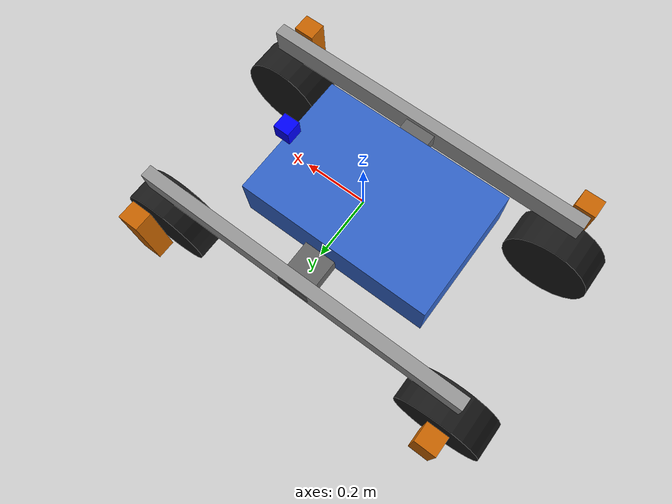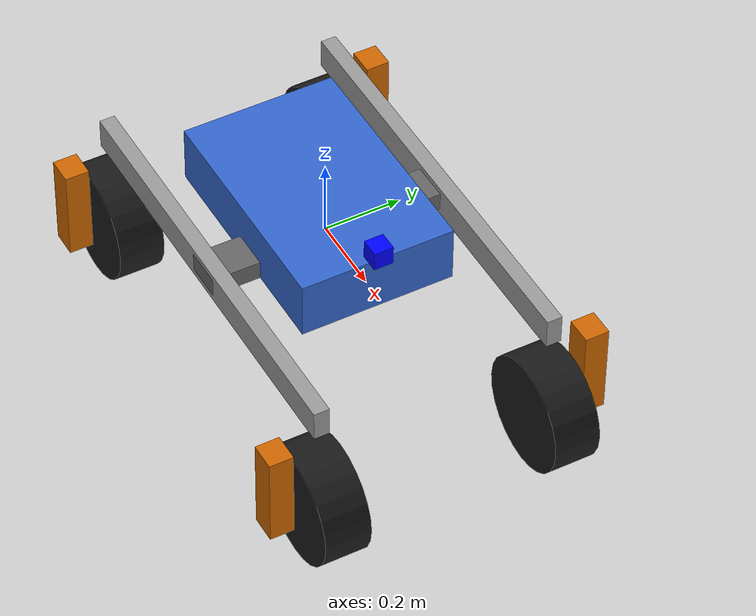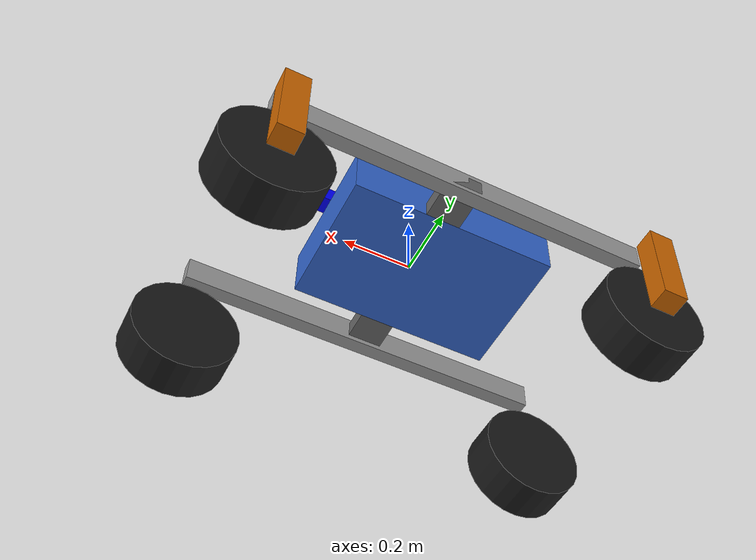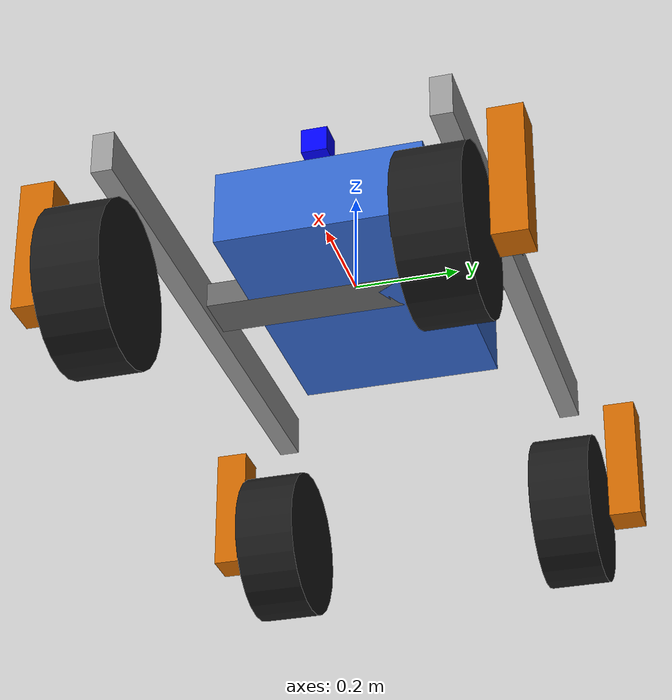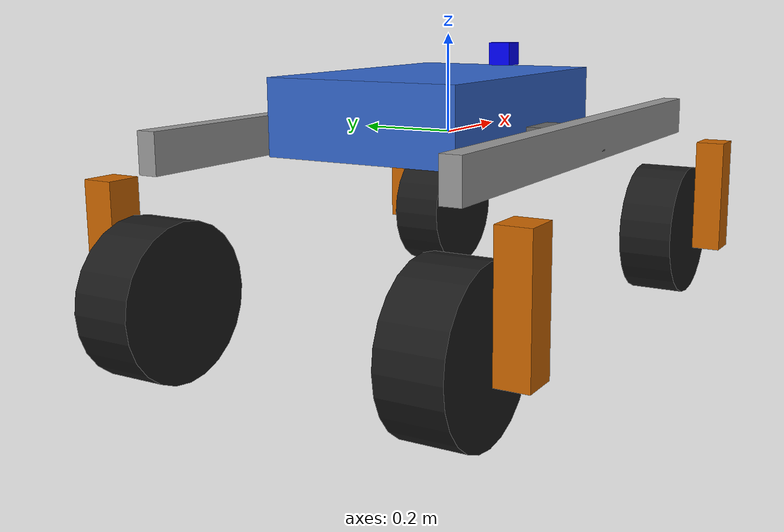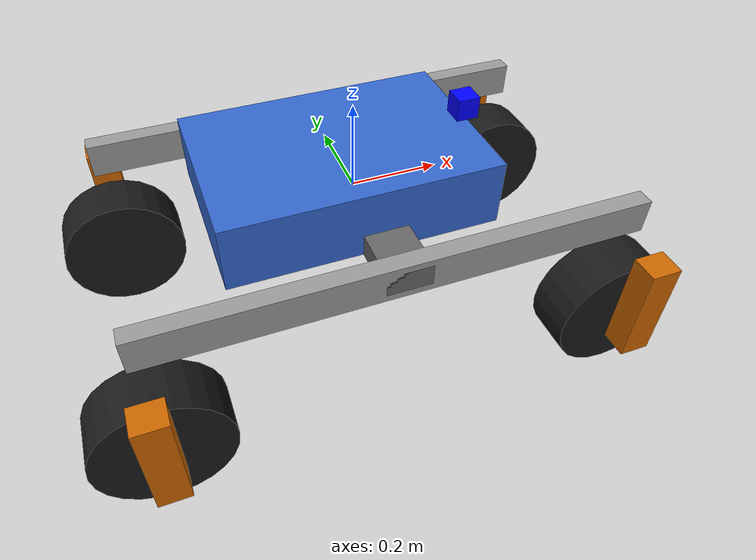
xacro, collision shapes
<?xml version="1.0"?>
<robot name="indomitus_s1" xmlns:xacro="http://www.ros.org/wiki/xacro">

  <!-- ===================== MATERIALS ===================== -->
  <material name="blue_body">
    <color rgba="0.2 0.4 0.8 1"/>
  </material>
  <material name="grey_structure">
    <color rgba="0.6 0.6 0.6 1"/>
  </material>
  <material name="orange_mount">
    <color rgba="0.8 0.4 0.0 1"/>
  </material>
  <material name="dark_wheel">
    <color rgba="0.1 0.1 0.1 1"/>
  </material>
  <material name="red_axii">
    <color rgba="0.4 0.4 0.4 1"/>
  </material>

  <!-- ===================== BASE ===================== -->
  <link name="base_link">
    <inertial>
      <mass value="0.1"/>
      <inertia ixx="0.01" iyy="0.01" izz="0.01" ixy="0" ixz="0" iyz="0"/>
    </inertial>
  </link>

  <!-- ===================== SUSPENSION BASE AXII ===================== -->
  <link name="suspension_base_axii_link">
    <inertial>
      <origin xyz="0 0 0" rpy="0 0 0"/>
      <mass value="0.5"/>
      <inertia ixx="0.5" iyy="0.5" izz="1.0" ixy="0" ixz="0" iyz="0"/>
    </inertial>
    <visual>
      <origin xyz="0 -0.325 0" rpy="0 0 0"/>
      <geometry>
        <mesh filename="package://indomitus_rover_description/meshes/suspension/central_axii.stl" scale="0.001 0.001 0.001"/>
      </geometry>
      <material name="red_axii"/>
    </visual>
    <collision>
      <origin xyz="0 0 0" rpy="0 0 0"/>
      <geometry>
        <box size="0.1 0.65 0.05"/>
      </geometry>
    </collision>
  </link>

  <joint name="suspension_base_axii_joint" type="fixed">
    <parent link="base_link"/>
    <child link="suspension_base_axii_link"/>
    <origin xyz="0 0 0" rpy="0 0 0"/>
  </joint>

  <!-- ===================== MAIN BODY ===================== -->
  <link name="main_body_link">
    <inertial>
      <origin xyz="0 0 0" rpy="0 0 0"/>
      <mass value="40.0"/>
      <inertia ixx="0.608" iyy="1.283" izz="1.733" ixy="0" ixz="0" iyz="0"/>
    </inertial>
    <visual>
      <origin xyz="0 0 0" rpy="0 0 0"/>
      <geometry>
        <box size="0.6 0.4 0.2"/>
      </geometry>
      <material name="blue_body"/>
    </visual>
    <collision>
      <origin xyz="0 0 0" rpy="0 0 0"/>
      <geometry>
        <box size="0.6 0.4 0.15"/>
      </geometry>
    </collision>
  </link>

  <joint name="main_body_joint" type="fixed">
    <parent link="suspension_base_axii_link"/>
    <child link="main_body_link"/>
    <origin xyz="-0.04 0 0.05" rpy="0 0 0"/>
  </joint>

  <!-- ===================== CAMERA ===================== -->
  <xacro:include filename="$(find indomitus_rover_description)/urdf/camera.urdf.xacro"/>
  <xacro:camera/>

  <!-- ===================== LEFT ROCKER ===================== -->
  <link name="l_rocker_link">
    <inertial>
      <origin xyz="0 0 0" rpy="0 0 0"/>
      <mass value="1.0"/>
      <inertia ixx="0.01" iyy="0.01" izz="0.01" ixy="0" ixz="0" iyz="0"/>
    </inertial>
    <visual>
      <origin xyz="-0.55 0.02 -0.04" rpy="0 0 0"/>
      <geometry>
        <mesh filename="package://indomitus_rover_description/meshes/suspension/rocker.stl" scale="0.001 0.001 0.001"/>
      </geometry>
      <material name="grey_structure"/>
    </visual>
    <collision>
      <origin xyz="0 0 0" rpy="0 0 0"/>
      <geometry>
        <box size="1.1 0.04 0.08"/>
      </geometry>
    </collision>
  </link>

  <joint name="l_rocker_joint" type="revolute">
    <parent link="suspension_base_axii_link"/>
    <child link="l_rocker_link"/>
    <origin xyz="0 0.305 0" rpy="0 0 0"/>
    <axis xyz="0 1 0"/>
    <limit lower="-0.5" upper="0.5" effort="100" velocity="1.0"/>
    <dynamics damping="0.5" friction="0.1"/>
  </joint>

  <!-- ===================== RIGHT ROCKER ===================== -->
  <link name="r_rocker_link">
    <inertial>
      <origin xyz="0 0 0" rpy="0 0 0"/>
      <mass value="1.0"/>
      <inertia ixx="0.01" iyy="0.01" izz="0.01" ixy="0" ixz="0" iyz="0"/>
    </inertial>
    <visual>
      <origin xyz="-0.55 0.02 -0.04" rpy="0 0 0"/>
      <geometry>
        <mesh filename="package://indomitus_rover_description/meshes/suspension/rocker.stl" scale="0.001 0.001 0.001"/>
      </geometry>
      <material name="grey_structure"/>
    </visual>
    <collision>
      <origin xyz="0 0 0" rpy="0 0 0"/>
      <geometry>
        <box size="1.1 0.04 0.08"/>
      </geometry>
    </collision>
  </link>

  <joint name="r_rocker_joint" type="revolute">
    <parent link="suspension_base_axii_link"/>
    <child link="r_rocker_link"/>
    <origin xyz="0 -0.305 0" rpy="0 0 0"/>
    <axis xyz="0 1 0"/>
    <limit lower="-0.5" upper="0.5" effort="100" velocity="1.0"/>
    <dynamics damping="0.5" friction="0.1"/>
  </joint>

  <!-- ===================== FRONT LEFT WHEEL MOUNT ===================== -->
  <link name="fl_wheel_mount_link">
    <inertial>
      <origin xyz="0 0 0" rpy="0 0 0"/>
      <mass value="0.162"/>
      <inertia ixx="0.0002" iyy="0.00012" izz="0.00012" ixy="0" ixz="0" iyz="0"/>
    </inertial>
    <visual>
      <origin xyz="0 -0.06 -0.269" rpy="0 0 0"/>
      <geometry>
        <mesh filename="package://indomitus_rover_description/meshes/suspension/wheel_mount.stl" scale="0.001 0.001 0.001"/>
      </geometry>
      <material name="orange_mount"/>
    </visual>
    <collision>
      <origin xyz="0 0.11125 -0.18" rpy="0 0 0"/>
      <geometry>
        <box size="0.07 0.0625 0.25"/>
      </geometry>
    </collision>
  </link>

  <joint name="fl_wheel_mount_joint" type="revolute">
    <parent link="l_rocker_link"/>
    <child link="fl_wheel_mount_link"/>
    <origin xyz="0.53 0 0" rpy="0 0 0"/>
    <axis xyz="0 0 1"/>
    <limit lower="-1.5708" upper="1.5708" effort="500" velocity="2"/>
    <dynamics damping="0.5" friction="0.3"/>
  </joint>

  <!-- ===================== FRONT LEFT WHEEL ===================== -->
  <link name="fl_wheel_link">
    <inertial>
      <origin xyz="0 0 0" rpy="0 0 0"/>
      <mass value="0.5"/>
      <inertia ixx="0.00563" iyy="0.00563" izz="0.01125" ixy="0" ixz="0" iyz="0"/>
    </inertial>
    <visual>
      <origin xyz="0 -0.06 0" rpy="-1.5708 0 0"/>
      <geometry>
        <mesh filename="package://indomitus_rover_description/meshes/suspension/wheel.stl" scale="0.001 0.001 0.001"/>
      </geometry>
      <material name="dark_wheel"/>
    </visual>
    <collision>
      <origin xyz="0 0 0" rpy="1.5708 0 0"/>
      <geometry>
        <cylinder radius="0.15" length="0.12"/>
      </geometry>
    </collision>
  </link>

  <joint name="fl_wheel_joint" type="continuous">
    <parent link="fl_wheel_mount_link"/>
    <child link="fl_wheel_link"/>
    <origin xyz="0 0 -0.27" rpy="0 0 0"/>
    <axis xyz="0 1 0"/>
    <limit effort="100" velocity="10"/>
  </joint>

  <!-- ===================== FRONT RIGHT WHEEL MOUNT ===================== -->
  <link name="fr_wheel_mount_link">
    <inertial>
      <origin xyz="0 0 0" rpy="0 0 0"/>
      <mass value="0.162"/>
      <inertia ixx="0.0002" iyy="0.00012" izz="0.00012" ixy="0" ixz="0" iyz="0"/>
    </inertial>
    <visual>
      <origin xyz="0 0.06 -0.269" rpy="0 0 3.14159"/>
      <geometry>
        <mesh filename="package://indomitus_rover_description/meshes/suspension/wheel_mount.stl" scale="0.001 0.001 0.001"/>
      </geometry>
      <material name="orange_mount"/>
    </visual>
    <collision>
      <origin xyz="0 -0.11125 -0.18" rpy="0 0 0"/>
      <geometry>
        <box size="0.07 0.0625 0.25"/>
      </geometry>
    </collision>
  </link>

  <joint name="fr_wheel_mount_joint" type="revolute">
    <parent link="r_rocker_link"/>
    <child link="fr_wheel_mount_link"/>
    <origin xyz="0.53 0 0" rpy="0 0 0"/>
    <axis xyz="0 0 1"/>
    <limit lower="-1.5708" upper="1.5708" effort="500" velocity="2"/>
    <dynamics damping="0.5" friction="0.3"/>
  </joint>

  <!-- ===================== FRONT RIGHT WHEEL ===================== -->
  <link name="fr_wheel_link">
    <inertial>
      <origin xyz="0 0 0" rpy="0 0 0"/>
      <mass value="0.5"/>
      <inertia ixx="0.00563" iyy="0.00563" izz="0.01125" ixy="0" ixz="0" iyz="0"/>
    </inertial>
    <visual>
      <origin xyz="0 0.06 0" rpy="-1.5708 0 3.14159"/>
      <geometry>
        <mesh filename="package://indomitus_rover_description/meshes/suspension/wheel.stl" scale="0.001 0.001 0.001"/>
      </geometry>
      <material name="dark_wheel"/>
    </visual>
    <collision>
      <origin xyz="0 0 0" rpy="-1.5708 0 0"/>
      <geometry>
        <cylinder radius="0.15" length="0.12"/>
      </geometry>
    </collision>
  </link>

  <joint name="fr_wheel_joint" type="continuous">
    <parent link="fr_wheel_mount_link"/>
    <child link="fr_wheel_link"/>
    <origin xyz="0 0 -0.27" rpy="0 0 0"/>
    <axis xyz="0 1 0"/>
    <limit effort="100" velocity="10"/>
  </joint>

  <!-- ===================== BACK LEFT WHEEL MOUNT ===================== -->
  <link name="bl_wheel_mount_link">
    <inertial>
      <origin xyz="0 0 0" rpy="0 0 0"/>
      <mass value="0.162"/>
      <inertia ixx="0.0002" iyy="0.00012" izz="0.00012" ixy="0" ixz="0" iyz="0"/>
    </inertial>
    <visual>
      <origin xyz="0 -0.06 -0.269" rpy="0 0 0"/>
      <geometry>
        <mesh filename="package://indomitus_rover_description/meshes/suspension/wheel_mount.stl" scale="0.001 0.001 0.001"/>
      </geometry>
      <material name="orange_mount"/>
    </visual>
    <collision>
      <origin xyz="0 0.11125 -0.18" rpy="0 0 0"/>
      <geometry>
        <box size="0.07 0.0625 0.25"/>
      </geometry>
    </collision>
  </link>

  <joint name="bl_wheel_mount_joint" type="revolute">
    <parent link="l_rocker_link"/>
    <child link="bl_wheel_mount_link"/>
    <origin xyz="-0.53 0 0" rpy="0 0 0"/>
    <axis xyz="0 0 1"/>
    <limit lower="-1.5708" upper="1.5708" effort="500" velocity="2"/>
    <dynamics damping="0.5" friction="0.3"/>
  </joint>

  <!-- ===================== BACK LEFT WHEEL ===================== -->
  <link name="bl_wheel_link">
    <inertial>
      <origin xyz="0 0 0" rpy="0 0 0"/>
      <mass value="0.5"/>
      <inertia ixx="0.00563" iyy="0.00563" izz="0.01125" ixy="0" ixz="0" iyz="0"/>
    </inertial>
    <visual>
      <origin xyz="0 -0.06 0" rpy="-1.5708 0 0"/>
      <geometry>
        <mesh filename="package://indomitus_rover_description/meshes/suspension/wheel.stl" scale="0.001 0.001 0.001"/>
      </geometry>
      <material name="dark_wheel"/>
    </visual>
    <collision>
      <origin xyz="0 0 0" rpy="1.5708 0 0"/>
      <geometry>
        <cylinder radius="0.15" length="0.12"/>
      </geometry>
    </collision>
  </link>

  <joint name="bl_wheel_joint" type="continuous">
    <parent link="bl_wheel_mount_link"/>
    <child link="bl_wheel_link"/>
    <origin xyz="0 0 -0.27" rpy="0 0 0"/>
    <axis xyz="0 1 0"/>
    <limit effort="100" velocity="10"/>
  </joint>

  <!-- ===================== BACK RIGHT WHEEL MOUNT ===================== -->
  <link name="br_wheel_mount_link">
    <inertial>
      <origin xyz="0 0 0" rpy="0 0 0"/>
      <mass value="0.162"/>
      <inertia ixx="0.0002" iyy="0.00012" izz="0.00012" ixy="0" ixz="0" iyz="0"/>
    </inertial>
    <visual>
      <origin xyz="0 0.06 -0.269" rpy="0 0 3.14159"/>
      <geometry>
        <mesh filename="package://indomitus_rover_description/meshes/suspension/wheel_mount.stl" scale="0.001 0.001 0.001"/>
      </geometry>
      <material name="orange_mount"/>
    </visual>
    <collision>
      <origin xyz="0 -0.11125 -0.18" rpy="0 0 0"/>
      <geometry>
        <box size="0.07 0.0625 0.25"/>
      </geometry>
    </collision>
  </link>

  <joint name="br_wheel_mount_joint" type="revolute">
    <parent link="r_rocker_link"/>
    <child link="br_wheel_mount_link"/>
    <origin xyz="-0.53 0 0" rpy="0 0 0"/>
    <axis xyz="0 0 1"/>
    <limit lower="-1.5708" upper="1.5708" effort="500" velocity="2"/>
    <dynamics damping="0.5" friction="0.3"/>
  </joint>

  <!-- ===================== BACK RIGHT WHEEL ===================== -->
  <link name="br_wheel_link">
    <inertial>
      <origin xyz="0 0 0" rpy="0 0 0"/>
      <mass value="0.5"/>
      <inertia ixx="0.00563" iyy="0.00563" izz="0.01125" ixy="0" ixz="0" iyz="0"/>
    </inertial>
    <visual>
      <origin xyz="0 0.06 0" rpy="-1.5708 0 3.14159"/>
      <geometry>
        <mesh filename="package://indomitus_rover_description/meshes/suspension/wheel.stl" scale="0.001 0.001 0.001"/>
      </geometry>
      <material name="dark_wheel"/>
    </visual>
    <collision>
      <origin xyz="0 0 0" rpy="-1.5708 0 0"/>
      <geometry>
        <cylinder radius="0.15" length="0.12"/>
      </geometry>
    </collision>
  </link>

  <joint name="br_wheel_joint" type="continuous">
    <parent link="br_wheel_mount_link"/>
    <child link="br_wheel_link"/>
    <origin xyz="0 0 -0.27" rpy="0 0 0"/>
    <axis xyz="0 1 0"/>
    <limit effort="100" velocity="10"/>
  </joint>

</robot>

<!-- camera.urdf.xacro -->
<robot xmlns:xacro="https://www.ros.org/wiki/xacro">

  <xacro:macro name="camera" params="tf_prefix:='' parent_link:='main_body_link'">

    <link name="${tf_prefix}camera_link">
      <inertial>
        <mass value="0.1"/>
        <origin xyz="0 0 0"/>
        <inertia ixx="0.001" iyy="0.001" izz="0.001"
                 ixy="0" ixz="0" iyz="0"/>
      </inertial>

      <visual>
        <origin xyz="0 0 0" rpy="0 0 0"/>
        <geometry>
          <box size="0.05 0.05 0.05"/>
        </geometry>
        <material name="camera_visual">
          <color rgba="0 0 1 1"/>
        </material>
      </visual>

      <collision>
        <geometry>
          <box size="0.05 0.05 0.05"/>
        </geometry>
      </collision>
    </link>

    <joint name="${tf_prefix}camera_joint" type="fixed">
      <parent link="${tf_prefix}${parent_link}"/>
      <child link="${tf_prefix}camera_link"/>
      <origin xyz="0.3 0 0.1" rpy="0 0 0"/>
    </joint>

    <gazebo reference="${tf_prefix}camera_link">
    <sensor name="${tf_prefix}camera_rgb" type="camera">
        <always_on>true</always_on>
        <update_rate>30</update_rate>
        <camera>
        <horizontal_fov>1.396</horizontal_fov>
        <image>
            <width>640</width>
            <height>480</height>
            <format>R8G8B8</format>
        </image>
        <clip>
            <near>0.1</near>
            <far>100.0</far>
        </clip>
        </camera>
    </sensor>
    </gazebo>

  </xacro:macro>

</robot>
